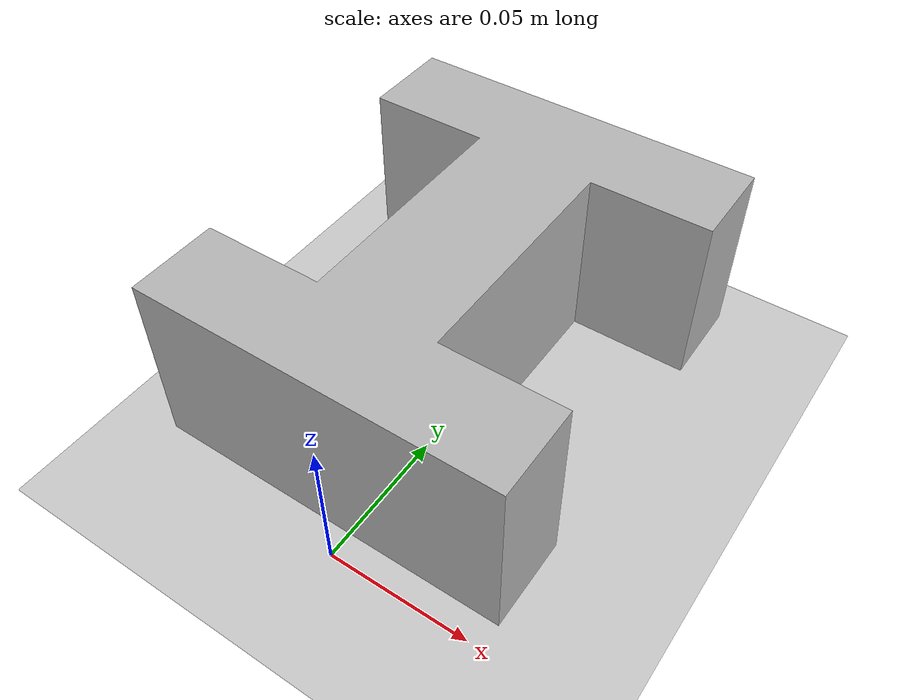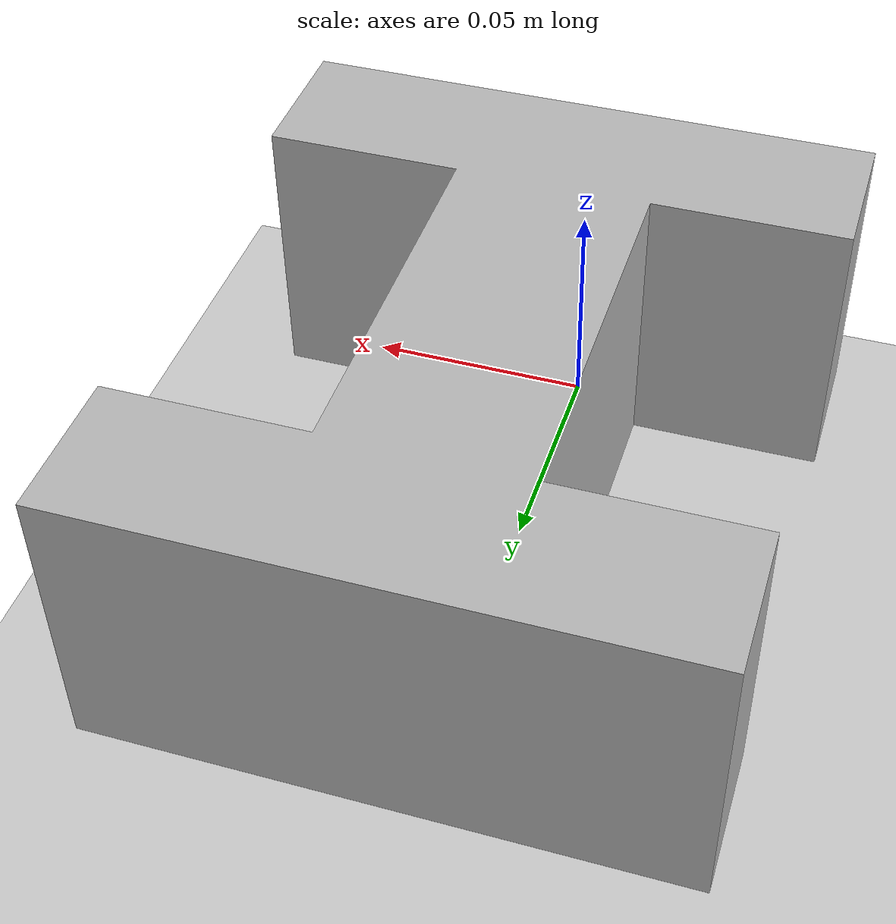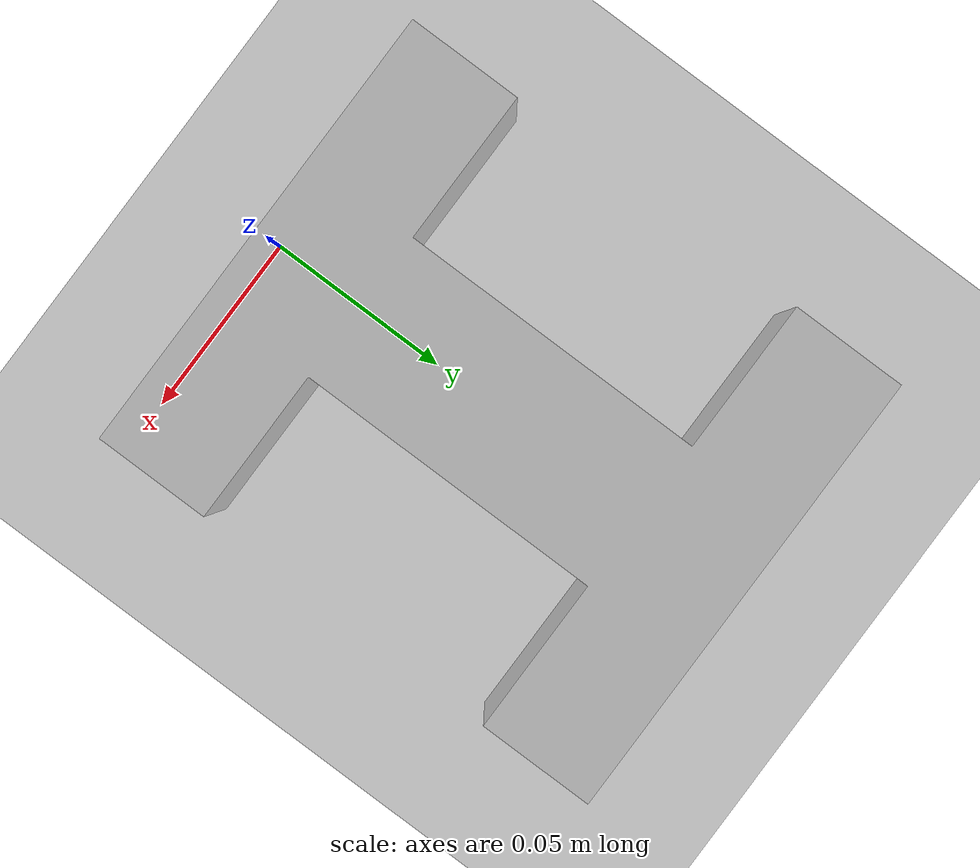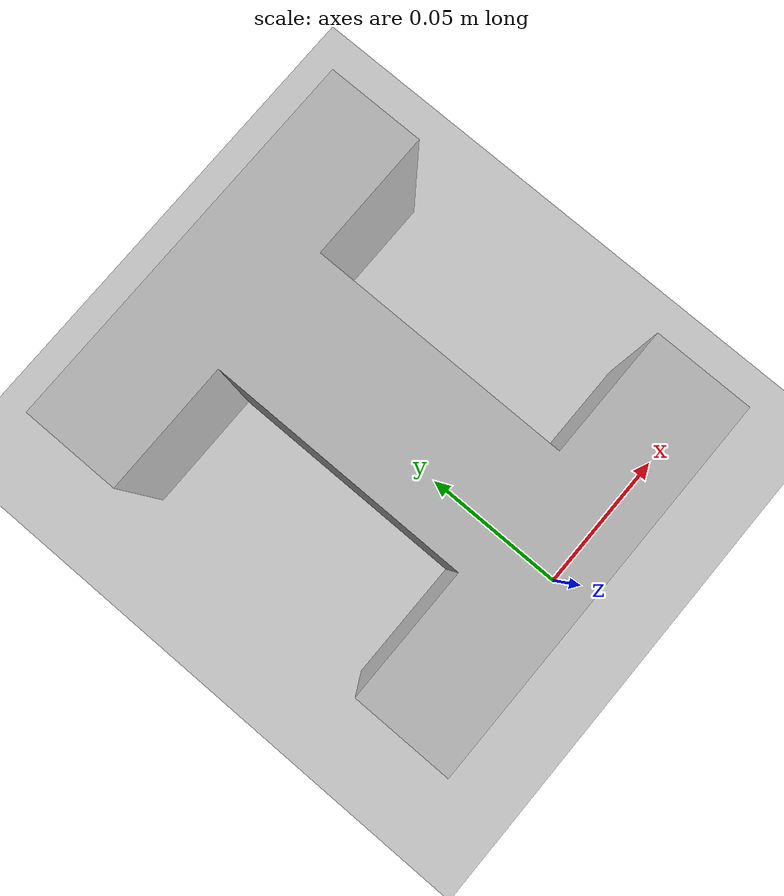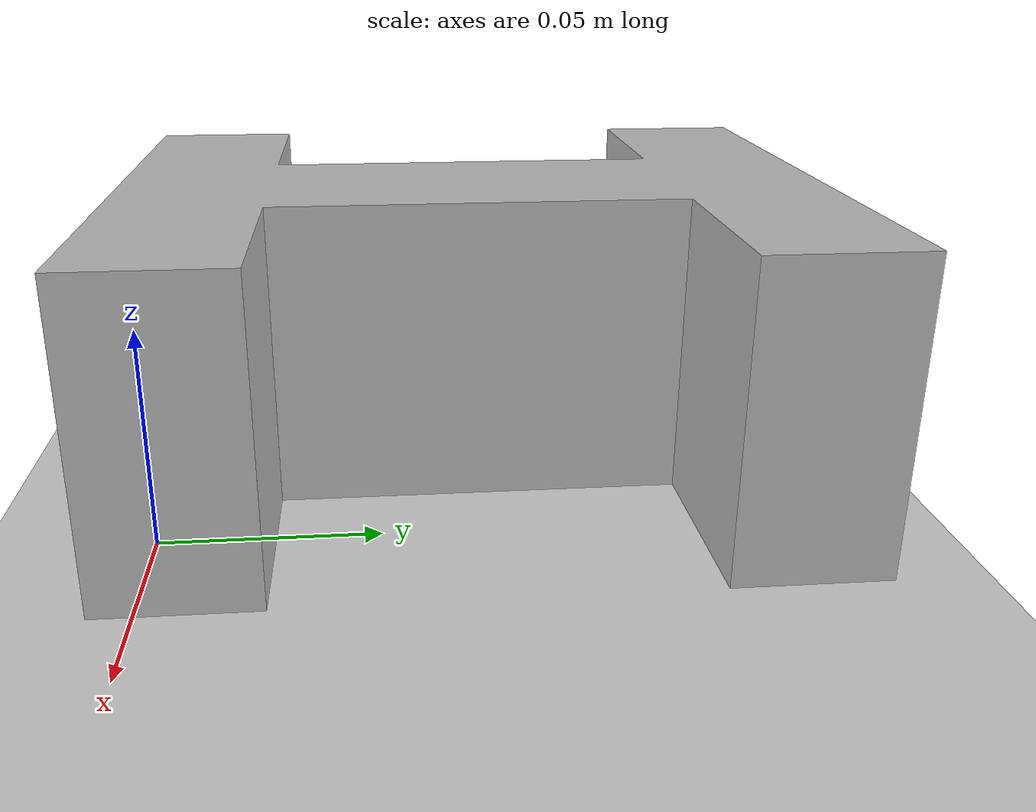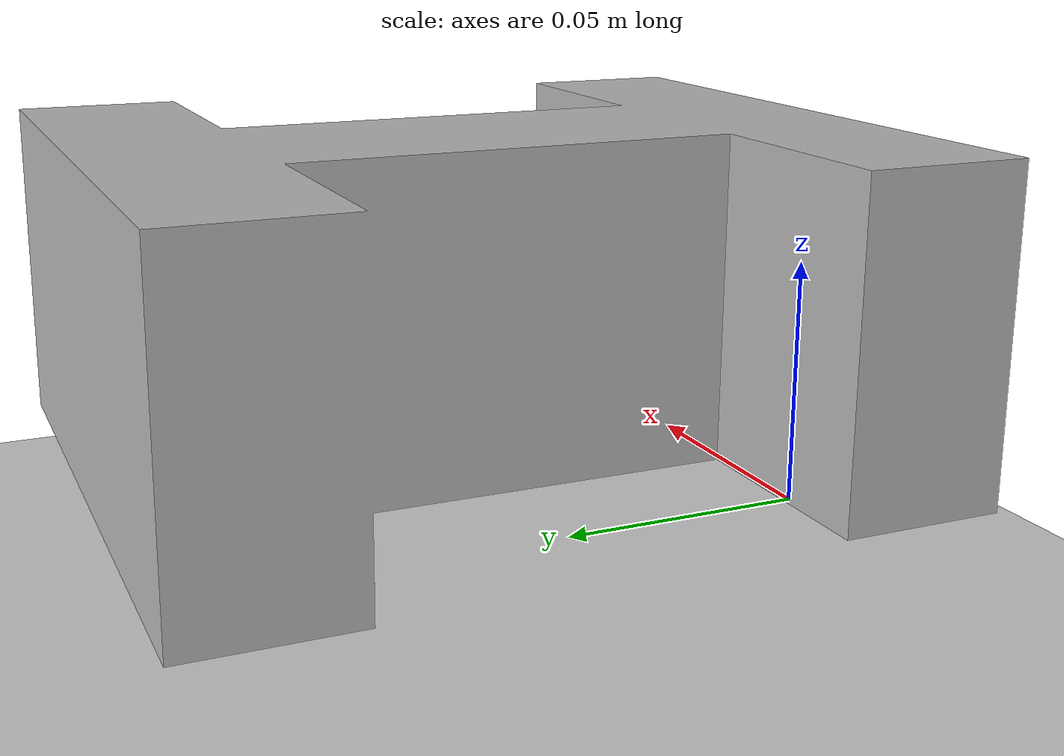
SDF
<?xml version="1.0" ?>
<sdf version="1.4">
  <world name="default">
    <include>
      <uri>model://ground_plane</uri>
    </include>
    <include>
      <uri>model://sun</uri>
    </include>
    <include>
      <uri>model://object</uri>
      <name>object</name>
      <pose>0.0 0.0 0.05 0 0 0</pose>
    </include>
  </world>
</sdf>

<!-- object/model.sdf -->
<sdf version="1.5">
  <model name="object">
    <link name="link">
      <inertial>
        <mass>0.40</mass>
        <inertia>
          <ixx>0.00058</ixx>
          <ixy>0</ixy>
          <ixz>0</ixz>
          <iyy>0.00058</iyy>
          <iyz>0</iyz>
          <izz>0.00019</izz>
        </inertia>
      </inertial>

      <collision name="base">
        <pose>0 0.015 0 0 0 0</pose>
        <geometry>
          <box>
            <size>0.12 0.03 0.06</size>
          </box>
        </geometry>
        <surface>
          <friction>
            <ode>
              <mu>0.01</mu>
              <mu2>0.01</mu2>
            </ode>
          </friction>
        </surface>
      </collision>

      <collision name="center">
        <pose>0 0.07 0 0 0 0</pose>
        <geometry>
          <box>
            <size>0.04 0.08 0.06</size>
          </box>
        </geometry>
        <surface>
          <friction>
            <ode>
              <mu>0.01</mu>
              <mu2>0.01</mu2>
            </ode>
          </friction>
        </surface>
      </collision>

      <collision name="top">
        <pose>0 0.125 0 0 0 0</pose>
        <geometry>
          <box>
            <size>0.12 0.03 0.06</size>
          </box>
        </geometry>
        <surface>
          <friction>
            <ode>
              <mu>0.01</mu>
              <mu2>0.01</mu2>
            </ode>
          </friction>
        </surface>
      </collision>

      <visual name="visual">
        <geometry>
          <mesh>
            <uri>model://object/meshes/object.stl</uri>
            <scale>0.001 0.001 0.001</scale>
          </mesh>
        </geometry>
      </visual>
    </link>
  </model>
</sdf>
